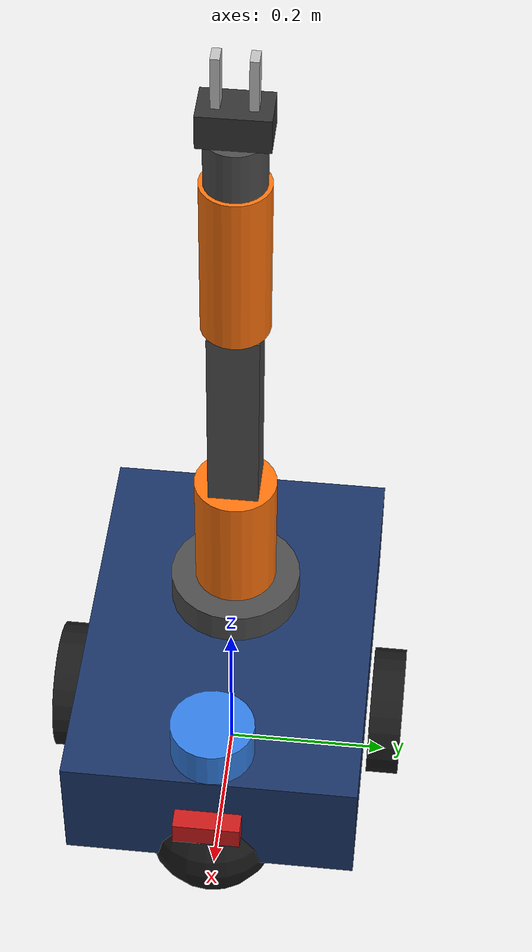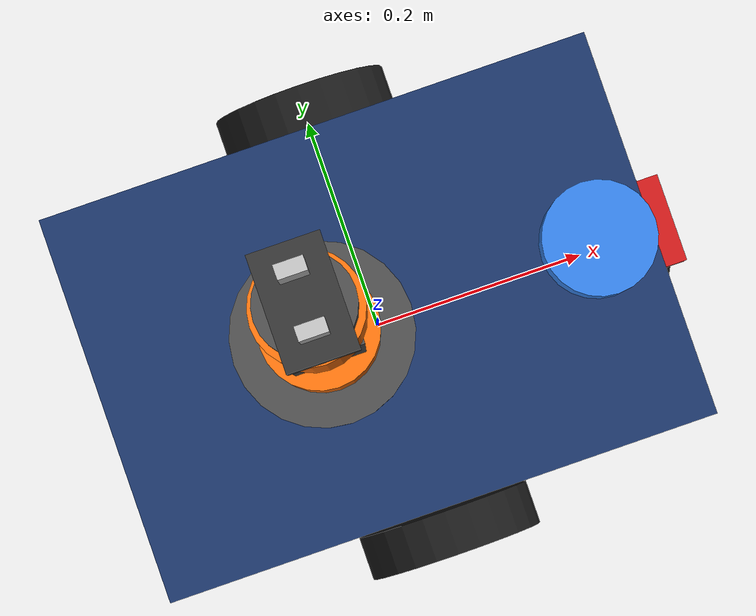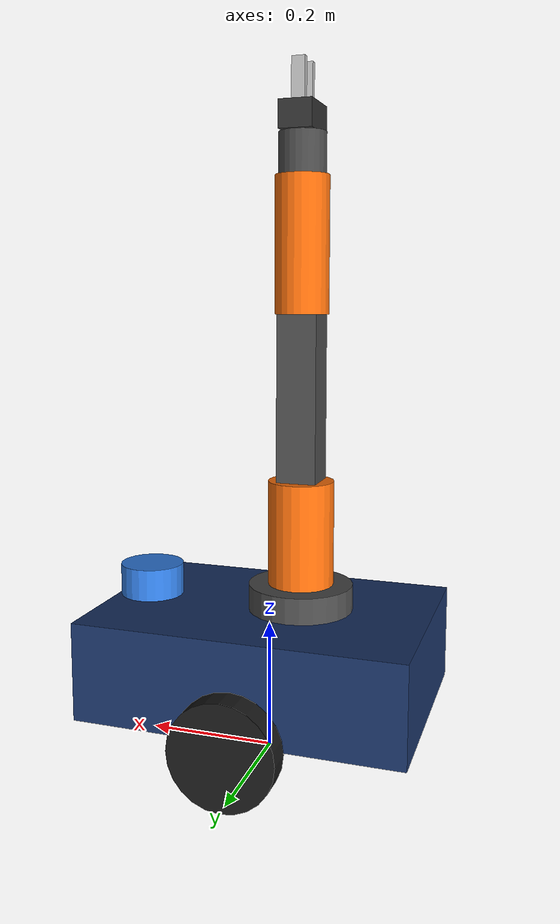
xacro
<?xml version="1.0"?>
<robot xmlns:xacro="http://www.ros.org/wiki/xacro" name="mobile_manipulator">

  <!-- include sub-modules -->
  <xacro:include filename="mobile_base.xacro"/>
  <xacro:include filename="arm.xacro"/>
  <xacro:include filename="gripper.xacro"/>
  <xacro:include filename="ros2_control.xacro"/>

</robot>

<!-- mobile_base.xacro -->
<robot xmlns:xacro="http://www.ros.org/wiki/xacro">

  <!-- materials -->
  <material name="base_navy">
    <color rgba="0.1 0.2 0.4 1.0"/>
  </material>

  <material name="wheel_black">
    <color rgba="0.1 0.1 0.1 1.0"/>
  </material>

  <material name="sensor_blue">
    <color rgba="0.2 0.5 0.9 1.0"/>
  </material>

  <material name="sensor_red">
    <color rgba="0.8 0.1 0.1 1.0"/>
  </material>

  <!-- base_footprint on ground (massless root link) -->
  <link name="base_footprint"/>

  <joint name="base_footprint_joint" type="fixed">
    <parent link="base_footprint"/>
    <child link="base_link"/>
    <origin xyz="0 0 0.08" rpy="0 0 0"/>
  </joint>

  <!-- base_link (chassis) -->
  <link name="base_link">
    <visual>
      <origin xyz="0 0 0.075" rpy="0 0 0"/>
      <geometry>
        <box size="0.5 0.35 0.15"/>
      </geometry>
      <material name="base_navy"/>
    </visual>
    <collision>
      <origin xyz="0 0 0.075" rpy="0 0 0"/>
      <geometry>
        <box size="0.5 0.35 0.15"/>
      </geometry>
    </collision>
    <inertial>
      <origin xyz="0 0 0.075" rpy="0 0 0"/>
      <mass value="12.0"/>
      <inertia ixx="0.145" ixy="0.0" ixz="0.0" iyy="0.272" iyz="0.0" izz="0.372"/>
    </inertial>
  </link>

  <!-- left drive wheel -->
  <joint name="left_wheel_joint" type="continuous">
    <parent link="base_link"/>
    <child link="left_wheel_link"/>
    <origin xyz="0 0.20 0" rpy="0 0 0"/>
    <axis xyz="0 1 0"/>
  </joint>

  <link name="left_wheel_link">
    <visual>
      <origin xyz="0 0 0" rpy="1.57079632679 0 0"/>
      <geometry>
        <cylinder radius="0.08" length="0.04"/>
      </geometry>
      <material name="wheel_black"/>
    </visual>
    <collision>
      <origin xyz="0 0 0" rpy="1.57079632679 0 0"/>
      <geometry>
        <cylinder radius="0.08" length="0.04"/>
      </geometry>
    </collision>
    <inertial>
      <origin xyz="0 0 0" rpy="0 0 0"/>
      <mass value="0.8"/>
      <inertia ixx="0.00138" ixy="0.0" ixz="0.0" iyy="0.00256" iyz="0.0" izz="0.00138"/>
    </inertial>
  </link>

  <!-- right drive wheel -->
  <joint name="right_wheel_joint" type="continuous">
    <parent link="base_link"/>
    <child link="right_wheel_link"/>
    <origin xyz="0 -0.20 0" rpy="0 0 0"/>
    <axis xyz="0 1 0"/>
  </joint>

  <link name="right_wheel_link">
    <visual>
      <origin xyz="0 0 0" rpy="1.57079632679 0 0"/>
      <geometry>
        <cylinder radius="0.08" length="0.04"/>
      </geometry>
      <material name="wheel_black"/>
    </visual>
    <collision>
      <origin xyz="0 0 0" rpy="1.57079632679 0 0"/>
      <geometry>
        <cylinder radius="0.08" length="0.04"/>
      </geometry>
    </collision>
    <inertial>
      <origin xyz="0 0 0" rpy="0 0 0"/>
      <mass value="0.8"/>
      <inertia ixx="0.00138" ixy="0.0" ixz="0.0" iyy="0.00256" iyz="0.0" izz="0.00138"/>
    </inertial>
  </link>

  <!-- front caster wheel -->
  <joint name="front_caster_joint" type="fixed">
    <parent link="base_link"/>
    <child link="front_caster_link"/>
    <origin xyz="0.20 0 0" rpy="0 0 0"/>
  </joint>

  <link name="front_caster_link">
    <visual>
      <origin xyz="0 0 0" rpy="0 0 0"/>
      <geometry>
        <sphere radius="0.08"/>
      </geometry>
      <material name="wheel_black"/>
    </visual>
    <collision>
      <origin xyz="0 0 0" rpy="0 0 0"/>
      <geometry>
        <sphere radius="0.08"/>
      </geometry>
    </collision>
    <inertial>
      <origin xyz="0 0 0" rpy="0 0 0"/>
      <mass value="0.4"/>
      <inertia ixx="0.001" ixy="0.0" ixz="0.0" iyy="0.001" iyz="0.0" izz="0.001"/>
    </inertial>
  </link>

  <!-- lidar sensor -->
  <joint name="lidar_joint" type="fixed">
    <parent link="base_link"/>
    <child link="lidar_link"/>
    <origin xyz="0.20 0 0.175" rpy="0 0 0"/>
  </joint>

  <link name="lidar_link">
    <visual>
      <origin xyz="0 0 0" rpy="0 0 0"/>
      <geometry>
        <cylinder radius="0.05" length="0.05"/>
      </geometry>
      <material name="sensor_blue"/>
    </visual>
    <collision>
      <origin xyz="0 0 0" rpy="0 0 0"/>
      <geometry>
        <cylinder radius="0.05" length="0.05"/>
      </geometry>
    </collision>
    <inertial>
      <origin xyz="0 0 0" rpy="0 0 0"/>
      <mass value="0.2"/>
      <inertia ixx="0.00016" ixy="0.0" ixz="0.0" iyy="0.00016" iyz="0.0" izz="0.00025"/>
    </inertial>
  </link>

  <!-- camera sensor -->
  <joint name="camera_joint" type="fixed">
    <parent link="base_link"/>
    <child link="camera_link"/>
    <origin xyz="0.26 0 0.08" rpy="0 0 0"/>
  </joint>

  <link name="camera_link">
    <visual>
      <origin xyz="0 0 0" rpy="0 0 0"/>
      <geometry>
        <box size="0.03 0.08 0.03"/>
      </geometry>
      <material name="sensor_red"/>
    </visual>
    <collision>
      <origin xyz="0 0 0" rpy="0 0 0"/>
      <geometry>
        <box size="0.03 0.08 0.03"/>
      </geometry>
    </collision>
    <inertial>
      <origin xyz="0 0 0" rpy="0 0 0"/>
      <mass value="0.1"/>
      <inertia ixx="0.00006" ixy="0.0" ixz="0.0" iyy="0.00001" iyz="0.0" izz="0.00006"/>
    </inertial>
  </link>

  <!-- imu sensor -->
  <joint name="imu_joint" type="fixed">
    <parent link="base_link"/>
    <child link="imu_link"/>
    <origin xyz="0 0 0.08" rpy="0 0 0"/>
  </joint>

  <link name="imu_link">
    <visual>
      <origin xyz="0 0 0" rpy="0 0 0"/>
      <geometry>
        <box size="0.03 0.03 0.01"/>
      </geometry>
      <material name="sensor_red"/>
    </visual>
    <collision>
      <origin xyz="0 0 0" rpy="0 0 0"/>
      <geometry>
        <box size="0.03 0.03 0.01"/>
      </geometry>
    </collision>
    <inertial>
      <origin xyz="0 0 0" rpy="0 0 0"/>
      <mass value="0.05"/>
      <inertia ixx="0.00001" ixy="0.0" ixz="0.0" iyy="0.00001" iyz="0.0" izz="0.00001"/>
    </inertial>
  </link>

</robot>

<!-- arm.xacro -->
<robot xmlns:xacro="http://www.ros.org/wiki/xacro">

  <!-- materials -->
  <material name="arm_orange">
    <color rgba="1.0 0.45 0.05 1.0"/>
  </material>

  <material name="arm_grey">
    <color rgba="0.3 0.3 0.3 1.0"/>
  </material>

  <!-- arm base mount -->
  <joint name="arm_base_joint" type="fixed">
    <parent link="base_link"/>
    <child link="arm_base_link"/>
    <origin xyz="-0.05 0 0.15" rpy="0 0 0"/>
  </joint>

  <link name="arm_base_link">
    <visual>
      <origin xyz="0 0 0.02" rpy="0 0 0"/>
      <geometry>
        <cylinder radius="0.08" length="0.04"/>
      </geometry>
      <material name="arm_grey"/>
    </visual>
    <collision>
      <origin xyz="0 0 0.02" rpy="0 0 0"/>
      <geometry>
        <cylinder radius="0.08" length="0.04"/>
      </geometry>
    </collision>
    <inertial>
      <origin xyz="0 0 0.02" rpy="0 0 0"/>
      <mass value="1.5"/>
      <inertia ixx="0.0026" ixy="0.0" ixz="0.0" iyy="0.0026" iyz="0.0" izz="0.0048"/>
    </inertial>
  </link>

  <!-- arm joint 1: shoulder pan -->
  <joint name="arm_joint1" type="revolute">
    <parent link="arm_base_link"/>
    <child link="arm_link1"/>
    <origin xyz="0 0 0.04" rpy="0 0 0"/>
    <axis xyz="0 0 1"/>
    <limit lower="-3.14" upper="3.14" effort="40.0" velocity="2.0"/>
  </joint>

  <link name="arm_link1">
    <visual>
      <origin xyz="0 0 0.08" rpy="0 0 0"/>
      <geometry>
        <cylinder radius="0.05" length="0.16"/>
      </geometry>
      <material name="arm_orange"/>
    </visual>
    <collision>
      <origin xyz="0 0 0.08" rpy="0 0 0"/>
      <geometry>
        <cylinder radius="0.05" length="0.16"/>
      </geometry>
    </collision>
    <inertial>
      <origin xyz="0 0 0.08" rpy="0 0 0"/>
      <mass value="2.0"/>
      <inertia ixx="0.0055" ixy="0.0" ixz="0.0" iyy="0.0055" iyz="0.0" izz="0.0025"/>
    </inertial>
  </link>

  <!-- arm joint 2: shoulder lift -->
  <joint name="arm_joint2" type="revolute">
    <parent link="arm_link1"/>
    <child link="arm_link2"/>
    <origin xyz="0 0 0.16" rpy="0 0 0"/>
    <axis xyz="0 1 0"/>
    <limit lower="-1.57" upper="1.57" effort="40.0" velocity="2.0"/>
  </joint>

  <link name="arm_link2">
    <visual>
      <origin xyz="0 0 0.125" rpy="0 0 0"/>
      <geometry>
        <box size="0.06 0.06 0.25"/>
      </geometry>
      <material name="arm_grey"/>
    </visual>
    <collision>
      <origin xyz="0 0 0.125" rpy="0 0 0"/>
      <geometry>
        <box size="0.06 0.06 0.25"/>
      </geometry>
    </collision>
    <inertial>
      <origin xyz="0 0 0.125" rpy="0 0 0"/>
      <mass value="1.8"/>
      <inertia ixx="0.0099" ixy="0.0" ixz="0.0" iyy="0.0099" iyz="0.0" izz="0.00108"/>
    </inertial>
  </link>

  <!-- arm joint 3: elbow flex -->
  <joint name="arm_joint3" type="revolute">
    <parent link="arm_link2"/>
    <child link="arm_link3"/>
    <origin xyz="0 0 0.25" rpy="0 0 0"/>
    <axis xyz="0 1 0"/>
    <limit lower="-2.0" upper="2.0" effort="30.0" velocity="2.5"/>
  </joint>

  <link name="arm_link3">
    <visual>
      <origin xyz="0 0 0.1" rpy="0 0 0"/>
      <geometry>
        <cylinder radius="0.04" length="0.2"/>
      </geometry>
      <material name="arm_orange"/>
    </visual>
    <collision>
      <origin xyz="0 0 0.1" rpy="0 0 0"/>
      <geometry>
        <cylinder radius="0.04" length="0.2"/>
      </geometry>
    </collision>
    <inertial>
      <origin xyz="0 0 0.1" rpy="0 0 0"/>
      <mass value="1.2"/>
      <inertia ixx="0.0042" ixy="0.0" ixz="0.0" iyy="0.0042" iyz="0.0" izz="0.00096"/>
    </inertial>
  </link>

  <!-- arm joint 4: wrist roll -->
  <joint name="arm_joint4" type="revolute">
    <parent link="arm_link3"/>
    <child link="arm_link4"/>
    <origin xyz="0 0 0.2" rpy="0 0 0"/>
    <axis xyz="0 0 1"/>
    <limit lower="-3.14" upper="3.14" effort="15.0" velocity="3.0"/>
  </joint>

  <link name="arm_link4">
    <visual>
      <origin xyz="0 0 0.03" rpy="0 0 0"/>
      <geometry>
        <cylinder radius="0.035" length="0.06"/>
      </geometry>
      <material name="arm_grey"/>
    </visual>
    <collision>
      <origin xyz="0 0 0.03" rpy="0 0 0"/>
      <geometry>
        <cylinder radius="0.035" length="0.06"/>
      </geometry>
    </collision>
    <inertial>
      <origin xyz="0 0 0.03" rpy="0 0 0"/>
      <mass value="0.5"/>
      <inertia ixx="0.0003" ixy="0.0" ixz="0.0" iyy="0.0003" iyz="0.0" izz="0.0003"/>
    </inertial>
  </link>

</robot>

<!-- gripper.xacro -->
<robot xmlns:xacro="http://www.ros.org/wiki/xacro">

  <!-- materials -->
  <material name="gripper_dark">
    <color rgba="0.2 0.2 0.2 1.0"/>
  </material>

  <material name="finger_silver">
    <color rgba="0.75 0.75 0.75 1.0"/>
  </material>

  <!-- gripper base mount on arm_link4 -->
  <joint name="gripper_joint" type="fixed">
    <parent link="arm_link4"/>
    <child link="gripper_base_link"/>
    <origin xyz="0 0 0.06" rpy="0 0 0"/>
  </joint>

  <link name="gripper_base_link">
    <visual>
      <origin xyz="0 0 0.02" rpy="0 0 0"/>
      <geometry>
        <box size="0.05 0.08 0.04"/>
      </geometry>
      <material name="gripper_dark"/>
    </visual>
    <collision>
      <origin xyz="0 0 0.02" rpy="0 0 0"/>
      <geometry>
        <box size="0.05 0.08 0.04"/>
      </geometry>
    </collision>
    <inertial>
      <origin xyz="0 0 0.02" rpy="0 0 0"/>
      <mass value="0.4"/>
      <inertia ixx="0.00026" ixy="0.0" ixz="0.0" iyy="0.00013" iyz="0.0" izz="0.00030"/>
    </inertial>
  </link>

  <!-- left finger -->
  <joint name="left_finger_joint" type="prismatic">
    <parent link="gripper_base_link"/>
    <child link="left_finger_link"/>
    <origin xyz="0 0.02 0.04" rpy="0 0 0"/>
    <axis xyz="0 1 0"/>
    <limit lower="0.0" upper="0.03" effort="20.0" velocity="0.1"/>
  </joint>

  <link name="left_finger_link">
    <visual>
      <origin xyz="0 0 0.03" rpy="0 0 0"/>
      <geometry>
        <box size="0.02 0.01 0.06"/>
      </geometry>
      <material name="finger_silver"/>
    </visual>
    <collision>
      <origin xyz="0 0 0.03" rpy="0 0 0"/>
      <geometry>
        <box size="0.02 0.01 0.06"/>
      </geometry>
    </collision>
    <inertial>
      <origin xyz="0 0 0.03" rpy="0 0 0"/>
      <mass value="0.05"/>
      <inertia ixx="0.000015" ixy="0.0" ixz="0.0" iyy="0.000015" iyz="0.0" izz="0.000002"/>
    </inertial>
  </link>

  <!-- right finger with mimic -->
  <joint name="right_finger_joint" type="prismatic">
    <parent link="gripper_base_link"/>
    <child link="right_finger_link"/>
    <origin xyz="0 -0.02 0.04" rpy="0 0 0"/>
    <axis xyz="0 1 0"/>
    <limit lower="-0.03" upper="0.0" effort="20.0" velocity="0.1"/>
    <mimic joint="left_finger_joint" multiplier="-1.0" offset="0.0"/>
  </joint>

  <link name="right_finger_link">
    <visual>
      <origin xyz="0 0 0.03" rpy="0 0 0"/>
      <geometry>
        <box size="0.02 0.01 0.06"/>
      </geometry>
      <material name="finger_silver"/>
    </visual>
    <collision>
      <origin xyz="0 0 0.03" rpy="0 0 0"/>
      <geometry>
        <box size="0.02 0.01 0.06"/>
      </geometry>
    </collision>
    <inertial>
      <origin xyz="0 0 0.03" rpy="0 0 0"/>
      <mass value="0.05"/>
      <inertia ixx="0.000015" ixy="0.0" ixz="0.0" iyy="0.000015" iyz="0.0" izz="0.000002"/>
    </inertial>
  </link>

</robot>
